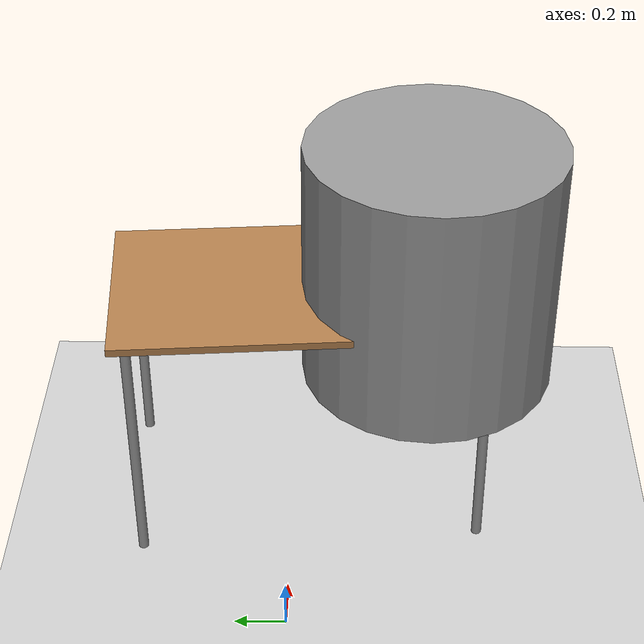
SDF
<sdf version="1.4">
 <world name="default">
  <model name="ground_plane">
   <static>1</static>
   <link name="link">
    <collision name="collision">
     <geometry><plane><normal>0 0 1</normal><size>100 100</size></plane></geometry>
     <surface><friction><ode><mu>100</mu><mu2>50</mu2></ode></friction></surface>
    </collision>
    <visual name="visual">
     <cast_shadows>0</cast_shadows>
     <geometry><plane><normal>0 0 1</normal><size>100 100</size></plane></geometry>
     <material>
      <script><uri>file://media/materials/scripts/gazebo.material</uri><name>Gazebo/Grey</name></script>
     </material>
    </visual>
    <velocity_decay><linear>0</linear><angular>0</angular></velocity_decay>
   </link>
  </model>
  <light name="sun" type="directional">
   <pose>0 0 10 0 -0 0</pose>
   <diffuse>0.8 0.8 0.8 1</diffuse>
   <specular>0.2 0.2 0.2 1</specular>
   <attenuation>
    <range>1000</range>
    <constant>0.9</constant>
    <linear>0.01</linear>
    <quadratic>0.001</quadratic>
   </attenuation>
   <direction>-0.5 0.1 -0.9</direction>
  </light>
  <physics type="ode">
   <real_time_update_rate>1000</real_time_update_rate>
   <gravity>0 0 -9.81</gravity>
   <max_step_size>0.001</max_step_size>
   <real_time_factor>1</real_time_factor>
  </physics>
  <scene><ambient>0.4 0.4 0.4 1</ambient><background>0.7 0.7 0.7 1</background><shadows>1</shadows></scene>
  <spherical_coordinates>
   <surface_model>EARTH_WGS84</surface_model>
   <latitude_deg>0</latitude_deg>
   <longitude_deg>0</longitude_deg>
   <elevation>0</elevation>
   <heading_deg>0</heading_deg>
  </spherical_coordinates>
  <model name="table">
   <static>1</static>
   <link name="link">
    <collision name="surface">
     <pose>0 0 1 0 -0 0</pose>
     <geometry><box><size>1.5 0.8 0.03</size></box></geometry>
     <surface><friction><ode><mu>0.6</mu><mu2>0.6</mu2></ode></friction></surface>
    </collision>
    <visual name="visual1">
     <pose>0 0 1 0 -0 0</pose>
     <geometry><box><size>1.5 0.8 0.03</size></box></geometry>
     <material>
      <script><uri>file://media/materials/scripts/gazebo.material</uri><name>Gazebo/Wood</name></script>
     </material>
    </visual>
    <collision name="front_left_leg">
     <pose>0.68 0.38 0.5 0 -0 0</pose>
     <geometry><cylinder><radius>0.02</radius><length>1</length></cylinder></geometry>
    </collision>
    <visual name="front_left_leg">
     <pose>0.68 0.38 0.5 0 -0 0</pose>
     <geometry><cylinder><radius>0.02</radius><length>1</length></cylinder></geometry>
     <material>
      <script><uri>file://media/materials/scripts/gazebo.material</uri><name>Gazebo/Grey</name></script>
     </material>
    </visual>
    <collision name="front_right_leg">
     <pose>0.68 -0.38 0.5 0 -0 0</pose>
     <geometry><cylinder><radius>0.02</radius><length>1</length></cylinder></geometry>
    </collision>
    <visual name="front_right_leg">
     <pose>0.68 -0.38 0.5 0 -0 0</pose>
     <geometry><cylinder><radius>0.02</radius><length>1</length></cylinder></geometry>
     <material>
      <script><uri>file://media/materials/scripts/gazebo.material</uri><name>Gazebo/Grey</name></script>
     </material>
    </visual>
    <collision name="back_right_leg">
     <pose>-0.68 -0.38 0.5 0 -0 0</pose>
     <geometry><cylinder><radius>0.02</radius><length>1</length></cylinder></geometry>
    </collision>
    <visual name="back_right_leg">
     <pose>-0.68 -0.38 0.5 0 -0 0</pose>
     <geometry><cylinder><radius>0.02</radius><length>1</length></cylinder></geometry>
     <material>
      <script><uri>file://media/materials/scripts/gazebo.material</uri><name>Gazebo/Grey</name></script>
     </material>
    </visual>
    <collision name="back_left_leg">
     <pose>-0.68 0.38 0.5 0 -0 0</pose>
     <geometry><cylinder><radius>0.02</radius><length>1</length></cylinder></geometry>
    </collision>
    <visual name="back_left_leg">
     <pose>-0.68 0.38 0.5 0 -0 0</pose>
     <geometry><cylinder><radius>0.02</radius><length>1</length></cylinder></geometry>
     <material>
      <script><uri>file://media/materials/scripts/gazebo.material</uri><name>Gazebo/Grey</name></script>
     </material>
    </visual>
    <velocity_decay><linear>0</linear><angular>0</angular></velocity_decay>
   </link>
   <pose>0.824853 -0.053495 0.019311 0 0 -1.49272</pose>
  </model>
  <model name="unit_cylinder_1">
   <pose>0.839714 -0.545517 1.12699 -0.005554 -0.015572 -3.11809</pose>
   <link name="link">
    <inertial>
     <mass>1</mass>
     <inertia><ixx>1</ixx><ixy>0</ixy><ixz>0</ixz><iyy>1</iyy><iyz>0</iyz><izz>1</izz></inertia>
    </inertial>
    <collision name="collision">
     <geometry><cylinder><radius>0.0230116</radius><length>0.184649</length></cylinder></geometry>
    </collision>
    <visual name="visual">
     <geometry><cylinder><radius>0.5</radius><length>1</length></cylinder></geometry>
     <material>
      <script><uri>file://media/materials/scripts/gazebo.material</uri><name>Gazebo/Grey</name></script>
     </material>
    </visual>
    <velocity_decay><linear>0</linear><angular>0</angular></velocity_decay>
   </link>
   <static>0</static>
  </model>
 </world>
</sdf>
